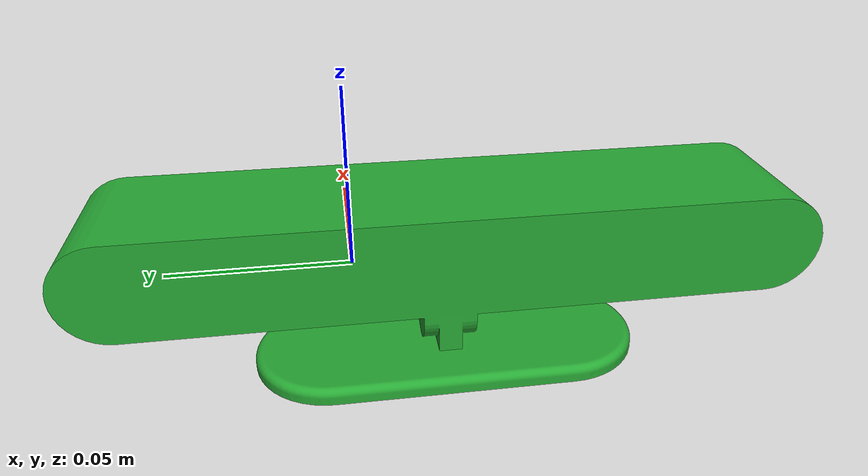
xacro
<?xml version="1.0"?>
<!-- Revolute-Revolute Manipulator -->
<robot name="camera_sim" xmlns:xacro="http://www.ros.org/wiki/xacro">
  <!-- Constants for robot dimensions -->
  <xacro:property name="PI" value="3.1415926535897931"/>
  <!-- Import all Gazebo-customization elements, including Gazebo colors -->
  <xacro:include filename="$(find camera_sim_description)/urdf/camera_sim.gazebo" />
  <!-- Import Rviz colors -->
  <xacro:include filename="$(find camera_sim_description)/urdf/materials.xacro" />

  <!-- Used for fixing robot to Gazebo 'base_link' -->

  <!-- depth_Camera -->
  <link name="camera_depth_frame">
    <collision>
      <origin xyz="0 0 0" rpy="0 0 0"/>
      <geometry>
	<box size="0.1 0.1 0.1"/>
      </geometry>
    </collision>
    <visual>
      <origin xyz="0 0 0" rpy="${pi/2} 0 ${pi/2}"/>
      <geometry>
	<mesh filename="package://camera_sim_description/meshes/xtion_collada.dae"/>
      </geometry>
      <material name="green"/>
    </visual>
    <inertial>
      <mass value="1e-5" />
      <origin xyz="0 0 0" rpy="0 0 0"/>
      <inertia ixx="1e-6" ixy="0" ixz="0" iyy="1e-6" iyz="0" izz="1e-6" />
    </inertial>
  </link>
</robot>
